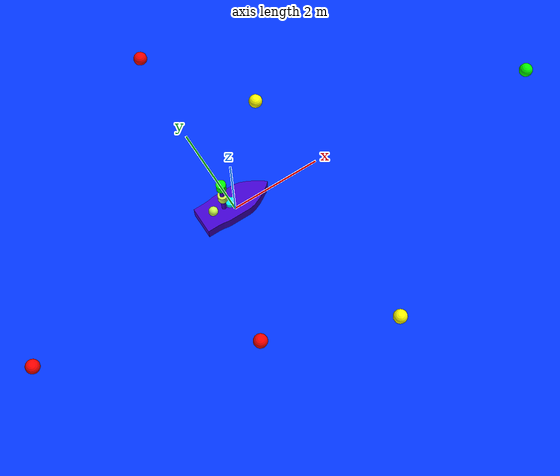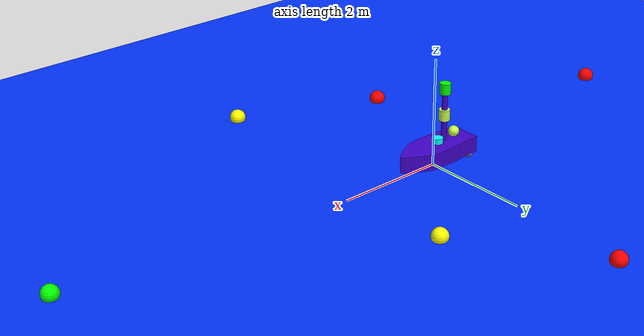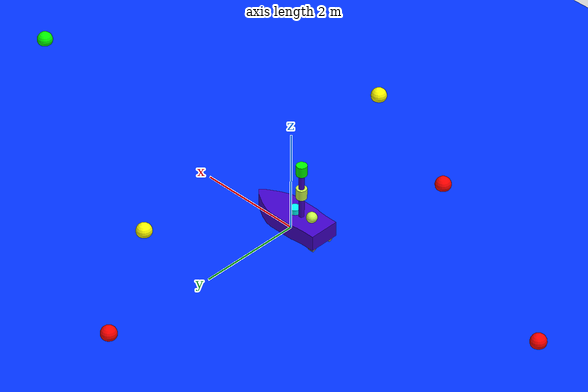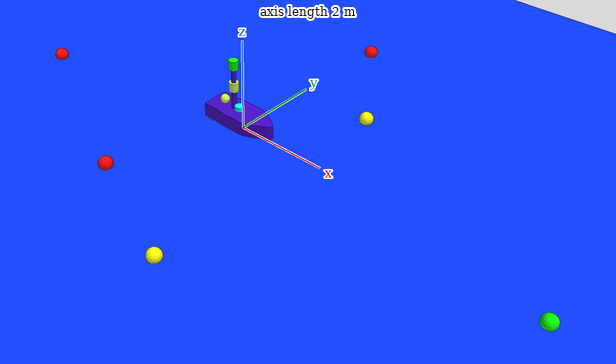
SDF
<sdf version='1.10'>
  <world name='empty'>
    <physics name='1ms' type='ignored'>
      <max_step_size>0.001</max_step_size>
      <real_time_factor>1</real_time_factor>
      <real_time_update_rate>1000</real_time_update_rate>
    </physics>
    <spherical_coordinates>
  <surface_model>EARTH_WGS84</surface_model>
    <world_frame_orientation>ENU</world_frame_orientation>
    <latitude_deg>27.7634</latitude_deg>
    <longitude_deg>-81.5558</longitude_deg>
    <elevation>0.0</elevation>
    <heading_deg>0.0</heading_deg>
  </spherical_coordinates>

    <!-- Core plugins -->
    <plugin name='gz::sim::systems::Physics' filename='gz-sim-physics-system'/>
    <plugin name='gz::sim::systems::UserCommands' filename='gz-sim-user-commands-system'/>
    <plugin name='gz::sim::systems::SceneBroadcaster' filename='gz-sim-scene-broadcaster-system'/>
    <plugin name='gz::sim::systems::Contact' filename='gz-sim-contact-system'/>
	<plugin filename="gz-sim-buoyancy-system" name="gz::sim::systems::Buoyancy">
	  <!-- graded buoyancy: water below z=0, air above -->
	  <graded_buoyancy>
	    <default_density>1000</default_density>
	    <density_change>
	      <above_depth>0</above_depth>
	      <density>1</density>
	    </density_change>
	  </graded_buoyancy>
	</plugin>
    <plugin
      filename="gz-sim-sensors-system"
      name="gz::sim::systems::Sensors">
      <render_engine>ogre2</render_engine>
    </plugin>
    <plugin filename="gz-sim-imu-system"
        name="gz::sim::systems::Imu">
    </plugin>
    <plugin
      filename="gz-sim-navsat-system"
      name="gz::sim::systems::NavSat">
    </plugin>

    <gravity>0 0 -9.8</gravity>
    <atmosphere type='adiabatic'/>

    <scene>
      <ambient>0.4 0.4 0.4 1</ambient>
      <background>0.7 0.7 0.7 1</background>
      <shadows>true</shadows>
    </scene>

    <!-- Ocean (visual only, no collision) -->
    <model name="ocean">
      <static>true</static>
      <link name="water_link">
        <visual name="water_visual">
          <geometry>
            <plane>
              <normal>0 0 1</normal>
              <size>1000 1000</size>
            </plane>
          </geometry>
          <material>
            <ambient>0 0.2 1 1</ambient>
            <diffuse>0 0.2 1 1</diffuse>
            <specular>0.2 0.2 0.2 1</specular>
          </material>
          <transparency>0.3</transparency>
	  <visibility_flags>1</visibility_flags>
        </visual>
      </link>
    </model>

    <!-- Roboboat -->
    <model name="roboboat">
      <pose>0 0 0.1 0 0 0</pose>
      <link name="hull">
        <inertial>
          <mass>60</mass>
          <inertia>
            <ixx>20</ixx>
            <iyy>20</iyy>
            <izz>40</izz>
          </inertia>
        </inertial>
      <collision name="hull_collision">
      <pose>0 0 0.1 0 0 0</pose>
          <geometry>
            <box>
              <size>1.6 0.5588 0.254</size>
            </box>
          </geometry>
        </collision>
      </link>

      <link name='boat'>
      	<inertial>
      	  <mass>60</mass>
      	</inertial>
      	<visual name="visual">
        <geometry>
          <mesh>
            <uri>/home/phoenixautonomy/ros2_ws/boat.dae</uri>
          </mesh>
        </geometry>
        <pose>0 0 0.15 0 0 0</pose>
      </visual>
      <collision name="collision">
        <geometry>
          <mesh>
            <uri>/home/phoenixautonomy/ros2_ws/boat.dae</uri>
          </mesh>
        </geometry>
        <pose>0 0 0.15 0 0 0</pose>
      </collision>
      </link>
      <joint name='boat_joint' type='fixed'>
	<parent>hull</parent>
	<child>boat</child>
      </joint>

      <link name='lidar_link'>
      	<pose>-0.25 0 1.3 0 0 0</pose>
        <inertial>
          <mass>0.001</mass>
          <inertia>
            <ixx>1</ixx>
            <iyy>1</iyy>
            <izz>1</izz>
          </inertia>
        </inertial>
        <collision name='lidar_collision'>
          <geometry>
            <cylinder>
              <radius>0.1</radius>
              <length>0.2</length>
            </cylinder>
          </geometry>
        </collision>
        <visual name='lidar_visual'>
          <geometry>
            <cylinder>
              <radius>0.1</radius>
              <length>0.2</length>
            </cylinder>
          </geometry>
          <material>
            <ambient>0.3 0.3 0.3 1</ambient>
            <diffuse>0 1 0 1</diffuse>
            <specular>1 1 1 1</specular>
          </material>
        </visual>
        <sensor name='gpu_lidar' type='gpu_lidar'>"
	    <pose>0 0 0 0 0 0</pose>
	    <topic>/lidar</topic>
	    <update_rate>10</update_rate>
	    <lidar>
		<scan>
		    <horizontal>
		        <samples>450</samples>
		        <resolution>1</resolution>
		        <min_angle>-3.141952</min_angle>
		        <max_angle>3.141952</max_angle>
		    </horizontal>
		    <vertical>
		        <samples>32</samples>
		        <resolution>1</resolution>
		        <min_angle>-0.6109</min_angle>
		        <max_angle>0.0927</max_angle>
		    </vertical>
		</scan>
		<range>
		    <min>0.08</min>
		    <max>10.0</max>
		    <resolution>0.01</resolution>
		</range>
		<visibility_mask>4294967294</visibility_mask>
	    </lidar>
	    <always_on>1</always_on>
	    <visualize>true</visualize>
			</sensor>
			  </link>
		<link name ='imu_link'>
			<pose>-0.1 0 0.3 0 0 0</pose>
			<inertial>
			  <mass>0.001</mass>
			  <inertia>
				<ixx>1</ixx>
				<iyy>1</iyy>
				<izz>1</izz>
			  </inertia>
			</inertial>
			<collision name='imu_collision'>
			  <geometry>
				<cylinder>
				  <radius>0.1</radius>
				  <length>0.2</length>
				</cylinder>
			  </geometry>
			</collision>
			<visual name='imu_visual'>
			  <geometry>
				<cylinder>
				  <radius>0.1</radius>
				  <length>0.2</length>
				</cylinder>
			  </geometry>
			  <material>
				<ambient>0.3 0.3 0.3 1</ambient>
				<diffuse>0 1 1 1</diffuse>
				<specular>1 1 1 1</specular>
			  </material>
			</visual>
		  <sensor name="imu_sensor" type="imu">
		  	<pose>0 0 0 0 0 0</pose>
		  	<topic>/imu</topic>
			<always_on>1</always_on>
			<update_rate>10</update_rate>
			<imu>
			  <enable_orientation>1</enable_orientation>
			  <angular_velocity>
			    <x>
			      <noise type="gaussian">
				<mean>0</mean>
				<stddev>0.009</stddev>
				<bias_mean>0.00075</bias_mean>
				<bias_stddev>0.005</bias_stddev>
				<dynamic_bias_stddev>0.00002</dynamic_bias_stddev>
				<dynamic_bias_correlation_time>400.0</dynamic_bias_correlation_time>
				<precision>0.00025</precision>
			      </noise>
			    </x>
			    <y>
			      <noise type="gaussian">
				<mean>0</mean>
				<stddev>0.009</stddev>
				<bias_mean>0.00075</bias_mean>
				<bias_stddev>0.005</bias_stddev>
				<dynamic_bias_stddev>0.00002</dynamic_bias_stddev>
				<dynamic_bias_correlation_time>400.0</dynamic_bias_correlation_time>
				<precision>0.00025</precision>
			      </noise>
			    </y>
			    <z>
			      <noise type="gaussian">
				<mean>0</mean>
				<stddev>0.009</stddev>
				<bias_mean>0.00075</bias_mean>
				<bias_stddev>0.005</bias_stddev>
				<dynamic_bias_stddev>0.00002</dynamic_bias_stddev>
				<dynamic_bias_correlation_time>400.0</dynamic_bias_correlation_time>
				<precision>0.00025</precision>
			      </noise>
			    </z>
			  </angular_velocity>
			  <linear_acceleration>
			    <x>
			      <noise type="gaussian">
				<mean>0</mean>
				<stddev>0.021</stddev>
				<bias_mean>0.05</bias_mean>
				<bias_stddev>0.0075</bias_stddev>
				<dynamic_bias_stddev>0.000375</dynamic_bias_stddev>
				<dynamic_bias_correlation_time>175.0</dynamic_bias_correlation_time>
				<precision>0.005</precision>
			      </noise>
			    </x>
			    <y>
			      <noise type="gaussian">
				<mean>0</mean>
				<stddev>0.021</stddev>
				<bias_mean>0.05</bias_mean>
				<bias_stddev>0.0075</bias_stddev>
				<dynamic_bias_stddev>0.000375</dynamic_bias_stddev>
				<dynamic_bias_correlation_time>175.0</dynamic_bias_correlation_time>
				<precision>0.005</precision>
			      </noise>
			    </y>
			    <z>
			      <noise type="gaussian">
				<mean>0</mean>
				<stddev>0.021</stddev>
				<bias_mean>0.05</bias_mean>
				<bias_stddev>0.0075</bias_stddev>
				<dynamic_bias_stddev>0.000375</dynamic_bias_stddev>
				<dynamic_bias_correlation_time>175.0</dynamic_bias_correlation_time>
				<precision>0.005</precision>
			      </noise>
			    </z>
			  </linear_acceleration>
			</imu>
		      </sensor>
		</link>
	<link name='camera_link'>
      	<pose>-0.25 0 0.8 0 0 0</pose>
        <inertial>
          <mass>0.001</mass>
          <inertia>
            <ixx>1</ixx>
            <iyy>1</iyy>
            <izz>1</izz>
          </inertia>
        </inertial>
        <collision name='camera_collision'>
          <geometry>
            <cylinder>
              <radius>0.1</radius>
              <length>0.2</length>
            </cylinder>
          </geometry>
        </collision>
        <visual name='camera_visual'>
          <geometry>
            <cylinder>
              <radius>0.1</radius>
              <length>0.2</length>
            </cylinder>
          </geometry>
          <material>
            <ambient>0.3 0.3 0.3 1</ambient>
            <diffuse>0.8 1 0.3 1</diffuse>
            <specular>1 1 1 1</specular>
          </material>
        </visual>
        <!-- Based on Intel realsense D435 (intrinsics and distortion not modeled)-->
      <sensor name="rs_front" type="rgbd_camera">
        <pose>0.122 0 0.257 0 0.46 0</pose>
        <topic>/rs_front</topic>
        <always_on>1</always_on>
        <update_rate>10</update_rate>
        <camera name="rs_front">
          <horizontal_fov>1.50098</horizontal_fov>
          <lens>
            <intrinsics>
              <!-- fx = fy = width / ( 2 * tan (hfov / 2 ) ) -->
              <fx>343.159</fx>
              <fy>343.159</fy>
              <!-- cx = ( width - 1 ) / 2 -->
              <cx>319.5</cx>
              <!-- cy = ( height - 1 ) / 2 -->
              <cy>179.5</cy>
              <s>0</s>
            </intrinsics>
          </lens>
          <distortion>
            <k1>0.0</k1>
            <k2>0.0</k2>
            <k3>0.0</k3>
            <p1>0.0</p1>
            <p2>0.0</p2>
            <center>0.5 0.5</center>
          </distortion>
          <image>
            <width>640</width>
            <height>360</height>
            <format>R8G8B8</format>
          </image>
          <clip>
            <near>0.01</near>
            <far>300</far>
          </clip>
          <depth_camera>
            <clip>
              <near>0.1</near>
              <far>10</far>
            </clip>
          </depth_camera>
          <noise>
            <type>gaussian</type>
            <mean>0</mean>
            <stddev>0.007</stddev>
          </noise>
        </camera>
      </sensor>
	</link>
	<link name='gps_link'>
      	<pose>-0.5 0 0.4 0 0 0</pose>
        <inertial>
          <mass>0.001</mass>
          <inertia>
            <ixx>1</ixx>
            <iyy>1</iyy>
            <izz>1</izz>
          </inertia>
        </inertial>
        <collision name='gps_collision'>
          <geometry>
            <sphere>
              <radius>0.1</radius>
            </sphere>
          </geometry>
        </collision>
        <visual name='gps_visual'>
          <geometry>
            <sphere>
              <radius>0.1</radius>
            </sphere>
          </geometry>
          <material>
            <ambient>0 0.2 0 1</ambient>
            <diffuse>0.8 1 0.3 1</diffuse>
            <specular>1 1 1 1</specular>
          </material>
        </visual>
        <sensor name="navsat_sensor" type="navsat">
	    <always_on>true</always_on>
	    <update_rate>10</update_rate>
	    <topic>/gps/fix</topic>
	    <gz_frame_id>base_link</gz_frame_id>
	  </sensor>
      </link>
      <joint name='lidar_joint' type='fixed'>
	<parent>hull</parent>
	<child>lidar_link</child>
      </joint>
      <joint name='imu_joint' type='fixed'>
	<parent>hull</parent>
	<child>imu_link</child>
      </joint>
      <joint name='camera_joint' type='fixed'>
	<parent>hull</parent>
	<child>camera_link</child>
      </joint>
      <joint name='gps_joint' type='fixed'>
	<parent>hull</parent>
	<child>gps_link</child>
      </joint>
      <!-- Left thruster -->
<link name="left_thruster">
  <pose>-0.7 -0.2 -0.05 0 1.57 0</pose>
  <inertial>
    <mass>0.001</mass>
    <inertia>
      <ixx>0.1</ixx>
      <iyy>0.1</iyy>
      <izz>0.1</izz>
    </inertia>
  </inertial>
  <visual name="left_thruster_visual">
    <geometry>
      <cylinder>
        <radius>0.05</radius>
        <length>0.1</length>
      </cylinder>
    </geometry>
    <material>
      <ambient>0.2 0.2 0.2 1</ambient>
      <diffuse>0.5 0.5 0.5 1</diffuse>
    </material>
  </visual>
</link>

<!-- Right thruster -->
<link name="right_thruster">
  <pose>-0.7 0.2 -0.05 0 1.57 0</pose>
  <inertial>
    <mass>0.001</mass>
    <inertia>
      <ixx>0.1</ixx>
      <iyy>0.1</iyy>
      <izz>0.1</izz>
    </inertia>
  </inertial>
  <visual name="right_thruster_visual">
    <geometry>
      <cylinder>
        <radius>0.05</radius>
        <length>0.1</length>
      </cylinder>
    </geometry>
    <material>
      <ambient>0.2 0.2 0.2 1</ambient>
      <diffuse>0.5 0.5 0.5 1</diffuse>
    </material>
  </visual>
</link>

<!-- Thruster joints -->
<joint name="left_thruster_joint" type="revolute">
  <parent>hull</parent>
  <child>left_thruster</child>
  <axis>
    <xyz>1 0 0</xyz>
  </axis>
</joint>

<joint name="right_thruster_joint" type="revolute">
  <parent>hull</parent>
  <child>right_thruster</child>
  <axis>
    <xyz>1 0 0</xyz>
  </axis>
</joint>
    <!-- Left thruster plugin -->
<plugin filename="gz-sim-thruster-system" name="gz::sim::systems::Thruster">
  <joint_name>left_thruster_joint</joint_name>
  <thrust_coefficient>0.5</thrust_coefficient>
  <fluid_density>1000</fluid_density>
  <deadband>0.0</deadband>
  <propeller_diameter>0.1</propeller_diameter>
  <topic>/model/roboboat/joint/left_thruster_joint/cmd_thrust</topic>
</plugin>

<!-- Right thruster plugin -->
<plugin filename="gz-sim-thruster-system" name="gz::sim::systems::Thruster">
  <joint_name>right_thruster_joint</joint_name>
  <thrust_coefficient>0.5</thrust_coefficient>
  <fluid_density>1000</fluid_density>
  <propeller_diameter>0.1</propeller_diameter>
  <topic>/model/roboboat/joint/right_thruster_joint/cmd_thrust</topic>
</plugin>

      <plugin
        filename="gz-sim-hydrodynamics-system"
        name="gz::sim::systems::Hydrodynamics">
        <link_name>hull</link_name>
        <xDotU>-0.04876161</xDotU>
        <yDotV>-1.26324739</yDotV>
        <zDotW>-1.26324739</zDotW>
        <kDotP>0</kDotP>
        <mDotQ>-0.3346</mDotQ>
        <nDotR>-0.3346</nDotR>
        <xUabsU>-0.62282</xUabsU>
        <xU>-5</xU>
        <yVabsV>-60.127</yVabsV>
        <yV>-5</yV>
        <zWabsW>-6.0127</zWabsW>
        <zW>-100</zW>
        <kPabsP>-0.001916</kPabsP>
        <kP>-1</kP>
        <mQabsQ>-6.32698957</mQabsQ>
        <mQ>-1</mQ>
        <nRabsR>-6.32698957</nRabsR>
        <nR>-1</nR>
      </plugin>
    </model>

    <!-- Buoy -->
    <model name='buoy_0'>
      <pose>0.14 4.2 0.05 0 0 0</pose>
      <link name='buoy_link'>
        <inertial>
          <mass>5</mass>
          <inertia>
            <ixx>2</ixx>
            <iyy>2</iyy>
            <izz>2</izz>
          </inertia>
        </inertial>
        <collision name='buoy_collision'>
          <geometry>
            <sphere>
              <radius>0.15</radius>
            </sphere>
          </geometry>
        </collision>
        <visual name='buoy_visual'>
          <geometry>
            <sphere>
              <radius>0.15</radius>
            </sphere>
          </geometry>
          <material>
            <ambient>0.3 0.3 0.3 1</ambient>
            <diffuse>1 0 0 1</diffuse>
            <specular>1 1 1 1</specular>
          </material>
        </visual>
      </link>
      <plugin
        filename="gz-sim-hydrodynamics-system"
        name="gz::sim::systems::Hydrodynamics">
        <link_name>buoy_link</link_name>
        <xDotU>-0.04876161</xDotU>
        <yDotV>-1.26324739</yDotV>
        <zDotW>-1.26324739</zDotW>
        <kDotP>0</kDotP>
        <mDotQ>-0.3346</mDotQ>
        <nDotR>-0.3346</nDotR>
        <xUabsU>-0.62282</xUabsU>
        <xU>-5</xU>
        <yVabsV>-60.127</yVabsV>
        <yV>-5</yV>
        <zWabsW>-6.0127</zWabsW>
        <zW>-100</zW>
        <kPabsP>-0.001916</kPabsP>
        <kP>-1</kP>
        <mQabsQ>-6.32698957</mQabsQ>
        <mQ>-1</mQ>
        <nRabsR>-6.32698957</nRabsR>
        <nR>-1</nR>
      </plugin>
    </model>

    <!-- Buoy -->
    <model name='buoy_1'>
      <pose>-1.1 -2.7 0.05 0 0 0</pose>
      <link name='buoy_link'>
        <inertial>
          <mass>5</mass>
          <inertia>
            <ixx>2</ixx>
            <iyy>2</iyy>
            <izz>2</izz>
          </inertia>
        </inertial>
        <collision name='buoy_collision'>
          <geometry>
            <sphere>
              <radius>0.15</radius>
            </sphere>
          </geometry>
        </collision>
        <visual name='buoy_visual'>
          <geometry>
            <sphere>
              <radius>0.15</radius>
            </sphere>
          </geometry>
          <material>
            <ambient>0.3 0.3 0.3 1</ambient>
            <diffuse>1 0 0 1</diffuse>
            <specular>1 1 1 1</specular>
          </material>
        </visual>
      </link>
      <plugin
        filename="gz-sim-hydrodynamics-system"
        name="gz::sim::systems::Hydrodynamics">
        <link_name>buoy_link</link_name>
        <xDotU>-0.04876161</xDotU>
        <yDotV>-1.26324739</yDotV>
        <zDotW>-1.26324739</zDotW>
        <kDotP>0</kDotP>
        <mDotQ>-0.3346</mDotQ>
        <nDotR>-0.3346</nDotR>
        <xUabsU>-0.62282</xUabsU>
        <xU>-5</xU>
        <yVabsV>-60.127</yVabsV>
        <yV>-5</yV>
        <zWabsW>-6.0127</zWabsW>
        <zW>-100</zW>
        <kPabsP>-0.001916</kPabsP>
        <kP>-1</kP>
        <mQabsQ>-6.32698957</mQabsQ>
        <mQ>-1</mQ>
        <nRabsR>-6.32698957</nRabsR>
        <nR>-1</nR>
      </plugin>
    </model>

    <!-- Buoy -->
    <model name='buoy_2'>
      <pose>1.5 -3.8 0.05 0 0 0</pose>
      <link name='buoy_link'>
        <inertial>
          <mass>3</mass>
          <inertia>
            <ixx>2</ixx>
            <iyy>2</iyy>
            <izz>2</izz>
          </inertia>
        </inertial>
        <collision name='buoy_collision'>
          <geometry>
            <sphere>
              <radius>0.1</radius>
            </sphere>
          </geometry>
        </collision>
        <visual name='buoy_visual'>
          <geometry>
            <sphere>
              <radius>0.15</radius>
            </sphere>
          </geometry>
          <material>
            <ambient>0.3 0.3 0.3 1</ambient>
            <diffuse>1 1 0 1</diffuse>
            <specular>1 1 1 1</specular>
          </material>
        </visual>
      </link>
      <plugin
        filename="gz-sim-hydrodynamics-system"
        name="gz::sim::systems::Hydrodynamics">
        <link_name>buoy_link</link_name>
        <xDotU>-0.04876161</xDotU>
        <yDotV>-1.26324739</yDotV>
        <zDotW>-1.26324739</zDotW>
        <kDotP>0</kDotP>
        <mDotQ>-0.3346</mDotQ>
        <nDotR>-0.3346</nDotR>
        <xUabsU>-0.62282</xUabsU>
        <xU>-5</xU>
        <yVabsV>-60.127</yVabsV>
        <yV>-5</yV>
        <zWabsW>-6.0127</zWabsW>
        <zW>-100</zW>
        <kPabsP>-0.001916</kPabsP>
        <kP>-1</kP>
        <mQabsQ>-6.32698957</mQabsQ>
        <mQ>-1</mQ>
        <nRabsR>-6.32698957</nRabsR>
        <nR>-1</nR>
      </plugin>
    </model>

    <!-- Buoy -->
    <model name='buoy_3'>
      <pose>-5.1 -0.7 0.05 0 0 0</pose>
      <link name='buoy_link'>
        <inertial>
          <mass>5</mass>
          <inertia>
            <ixx>2</ixx>
            <iyy>2</iyy>
            <izz>2</izz>
          </inertia>
        </inertial>
        <collision name='buoy_collision'>
          <geometry>
            <sphere>
              <radius>0.15</radius>
            </sphere>
          </geometry>
        </collision>
        <visual name='buoy_visual'>
          <geometry>
            <sphere>
              <radius>0.15</radius>
            </sphere>
          </geometry>
          <material>
            <ambient>0.3 0.3 0.3 1</ambient>
            <diffuse>1 0 0 1</diffuse>
            <specular>1 1 1 1</specular>
          </material>
        </visual>
      </link>
      <plugin
        filename="gz-sim-hydrodynamics-system"
        name="gz::sim::systems::Hydrodynamics">
        <link_name>buoy_link</link_name>
        <xDotU>-0.04876161</xDotU>
        <yDotV>-1.26324739</yDotV>
        <zDotW>-1.26324739</zDotW>
        <kDotP>0</kDotP>
        <mDotQ>-0.3346</mDotQ>
        <nDotR>-0.3346</nDotR>
        <xUabsU>-0.62282</xUabsU>
        <xU>-5</xU>
        <yVabsV>-60.127</yVabsV>
        <yV>-5</yV>
        <zWabsW>-6.0127</zWabsW>
        <zW>-100</zW>
        <kPabsP>-0.001916</kPabsP>
        <kP>-1</kP>
        <mQabsQ>-6.32698957</mQabsQ>
        <mQ>-1</mQ>
        <nRabsR>-6.32698957</nRabsR>
        <nR>-1</nR>
      </plugin>
    </model>

    <!-- Buoy -->
    <model name='buoy_4'>
      <pose>1.7 1.9 0.05 0 0 0</pose>
      <link name='buoy_link'>
        <inertial>
          <mass>3</mass>
          <inertia>
            <ixx>2</ixx>
            <iyy>2</iyy>
            <izz>2</izz>
          </inertia>
        </inertial>
        <collision name='buoy_collision'>
          <geometry>
            <sphere>
              <radius>0.1</radius>
            </sphere>
          </geometry>
        </collision>
        <visual name='buoy_visual'>
          <geometry>
            <sphere>
              <radius>0.15</radius>
            </sphere>
          </geometry>
          <material>
            <ambient>0.3 0.3 0.3 1</ambient>
            <diffuse>1 1 0 1</diffuse>
            <specular>1 1 1 1</specular>
          </material>
        </visual>
      </link>
      <plugin
        filename="gz-sim-hydrodynamics-system"
        name="gz::sim::systems::Hydrodynamics">
        <link_name>buoy_link</link_name>
        <xDotU>-0.04876161</xDotU>
        <yDotV>-1.26324739</yDotV>
        <zDotW>-1.26324739</zDotW>
        <kDotP>0</kDotP>
        <mDotQ>-0.3346</mDotQ>
        <nDotR>-0.3346</nDotR>
        <xUabsU>-0.62282</xUabsU>
        <xU>-5</xU>
        <yVabsV>-60.127</yVabsV>
        <yV>-5</yV>
        <zWabsW>-6.0127</zWabsW>
        <zW>-100</zW>
        <kPabsP>-0.001916</kPabsP>
        <kP>-1</kP>
        <mQabsQ>-6.32698957</mQabsQ>
        <mQ>-1</mQ>
        <nRabsR>-6.32698957</nRabsR>
        <nR>-1</nR>
      </plugin>
    </model>

    <!-- Buoy -->
    <model name='buoy_5'>
      <pose>7.1 -0.7 0.05 0 0 0</pose>
      <link name='buoy_link'>
        <inertial>
          <mass>5</mass>
          <inertia>
            <ixx>2</ixx>
            <iyy>2</iyy>
            <izz>2</izz>
          </inertia>
        </inertial>
        <collision name='buoy_collision'>
          <geometry>
            <sphere>
              <radius>0.15</radius>
            </sphere>
          </geometry>
        </collision>
        <visual name='buoy_visual'>
          <geometry>
            <sphere>
              <radius>0.15</radius>
            </sphere>
          </geometry>
          <material>
            <ambient>0.3 0.3 0.3 1</ambient>
            <diffuse>0 1 0 1</diffuse>
            <specular>1 1 1 1</specular>
          </material>
        </visual>
      </link>
      <plugin
        filename="gz-sim-hydrodynamics-system"
        name="gz::sim::systems::Hydrodynamics">
        <link_name>buoy_link</link_name>
        <xDotU>-0.04876161</xDotU>
        <yDotV>-1.26324739</yDotV>
        <zDotW>-1.26324739</zDotW>
        <kDotP>0</kDotP>
        <mDotQ>-0.3346</mDotQ>
        <nDotR>-0.3346</nDotR>
        <xUabsU>-0.62282</xUabsU>
        <xU>-5</xU>
        <yVabsV>-60.127</yVabsV>
        <yV>-5</yV>
        <zWabsW>-6.0127</zWabsW>
        <zW>-100</zW>
        <kPabsP>-0.001916</kPabsP>
        <kP>-1</kP>
        <mQabsQ>-6.32698957</mQabsQ>
        <mQ>-1</mQ>
        <nRabsR>-6.32698957</nRabsR>
        <nR>-1</nR>
      </plugin>
    </model>

    <!-- Sun light -->
    <light name='sun' type='directional'>
      <pose>0 0 10 0 0 0</pose>
      <cast_shadows>true</cast_shadows>
      <intensity>1</intensity>
      <direction>-0.1 0.1 -0.9</direction>
      <diffuse>0.8 0.8 0.8 1</diffuse>
      <specular>0.2 0.2 0.2 1</specular>
      <attenuation>
        <range>1000</range>
        <linear>0.01</linear>
        <constant>0.9</constant>
        <quadratic>0.001</quadratic>
      </attenuation>
    </light>

  </world>
</sdf>
